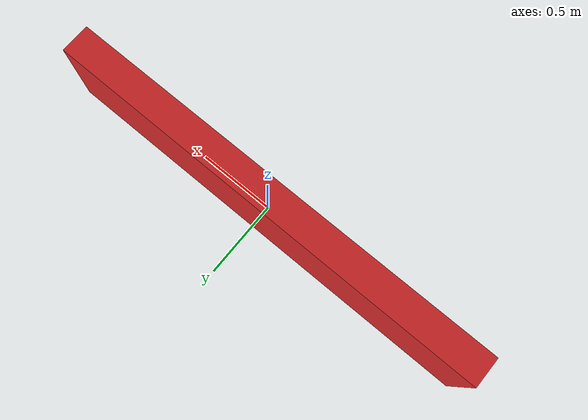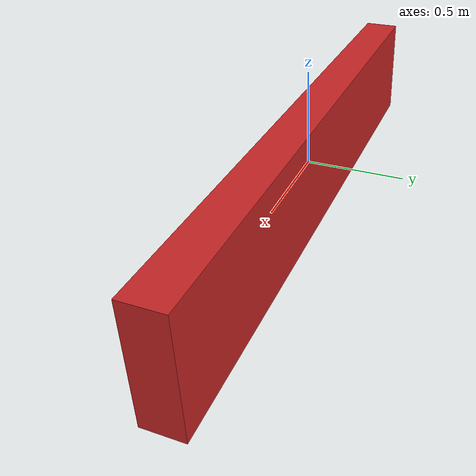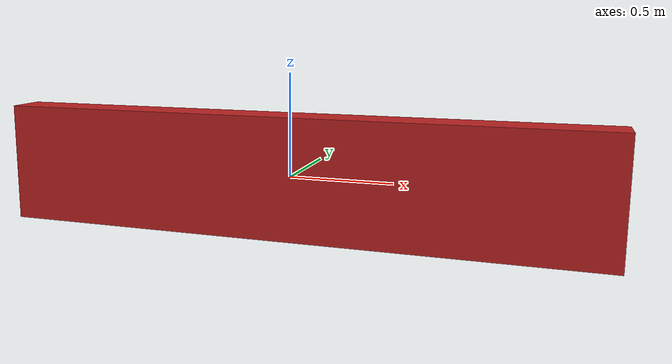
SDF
<?xml version="1.0" ?>
<sdf version="1.7">
  <model name="wall_x_obs">
    <static>true</static>
    <link name="link">
      <collision name="collision">
        <geometry>
          <box>
            <size>3.0 0.2 0.6</size>
          </box>
        </geometry>
      </collision>
      <visual name="visual">
        <geometry>
          <box>
            <size>3.0 0.2 0.6</size>
          </box>
        </geometry>
        <material>
          <script>
            <uri>file://media/materials/scripts/gazebo.material</uri>
            <name>Gazebo/Red</name>
          </script>
        </material>
      </visual>
    </link>
  </model>
</sdf>
